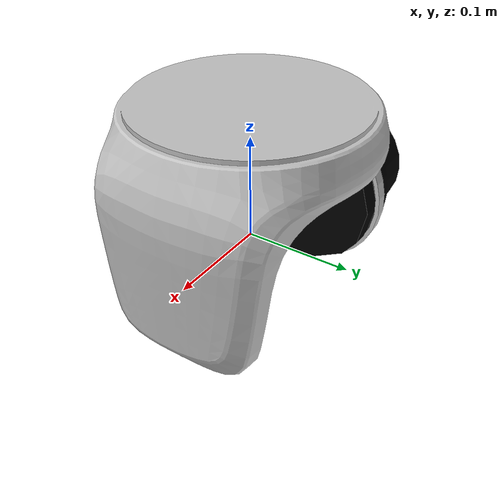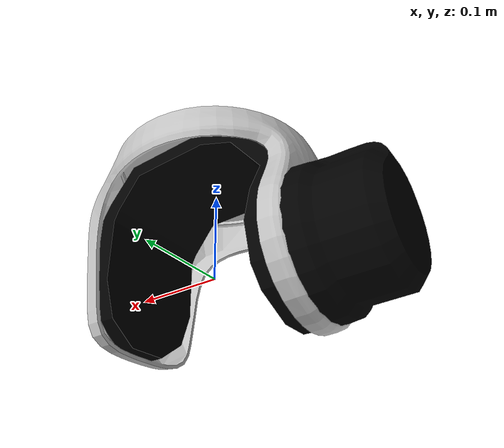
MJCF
<mujoco model="body_link4">
  <default>
    <default class="visual">
      <geom group="2" type="mesh" contype="0" conaffinity="0"/>
    </default>
    <default class="collision">
      <geom group="3" type="mesh"/>
    </default>
  </default>
  <asset>
    <material name="material_body_link4_0" specular="0.20000000000000004" shininess="1.0" rgba="0.76470588 0.76470588 0.76470588 1.0"/>
    <material name="material_body_link4_1" specular="0.20000000000000004" shininess="1.0" rgba="0.00000000 0.00000000 0.00000000 1.0"/>
    <mesh file="body_link4_0.obj"/>
    <mesh file="body_link4_1.obj"/>
  </asset>
  <worldbody>
    <body name="body_link4">
      <geom mesh="body_link4_0" material="material_body_link4_1" class="visual"/>
      <geom mesh="body_link4_1" material="material_body_link4_0" class="visual"/>
      <geom mesh="body_link4_0" class="collision"/>
      <geom mesh="body_link4_1" class="collision"/>
    </body>
  </worldbody>
</mujoco>
